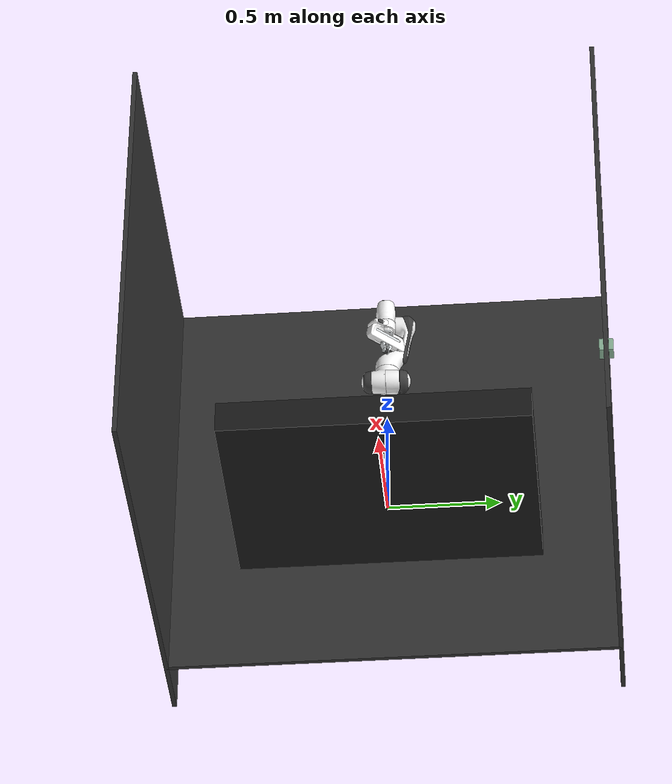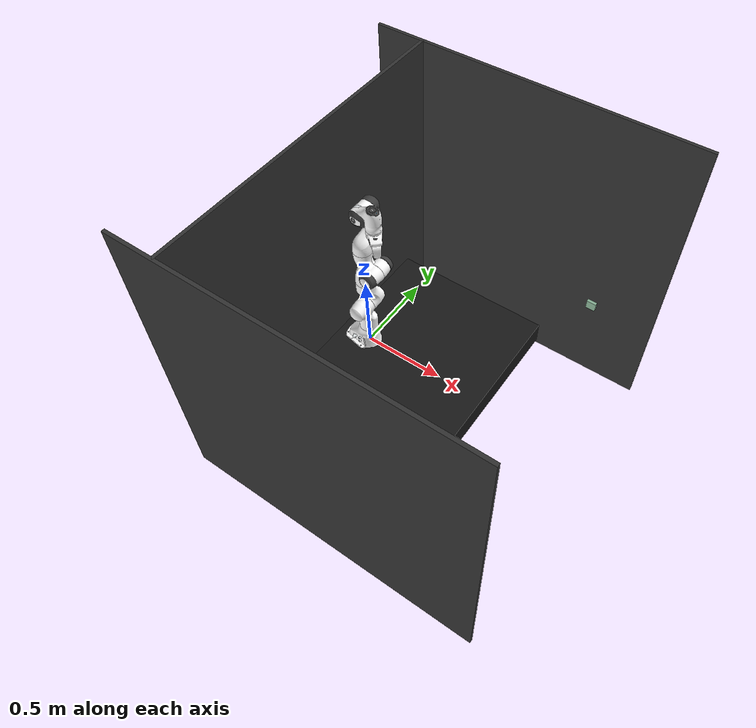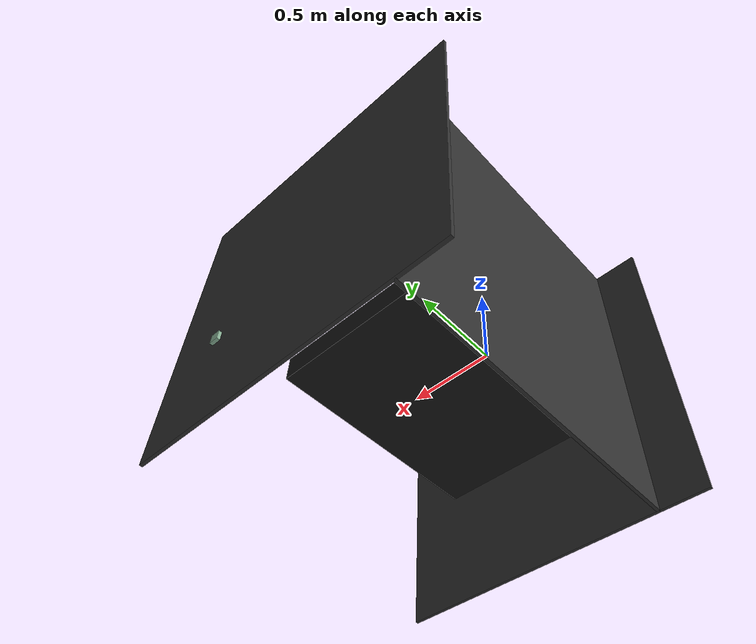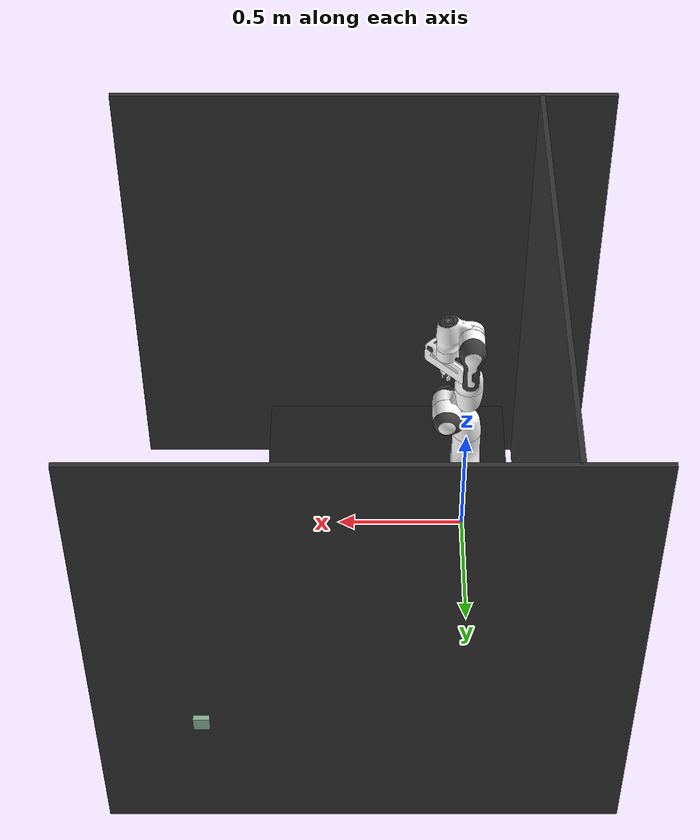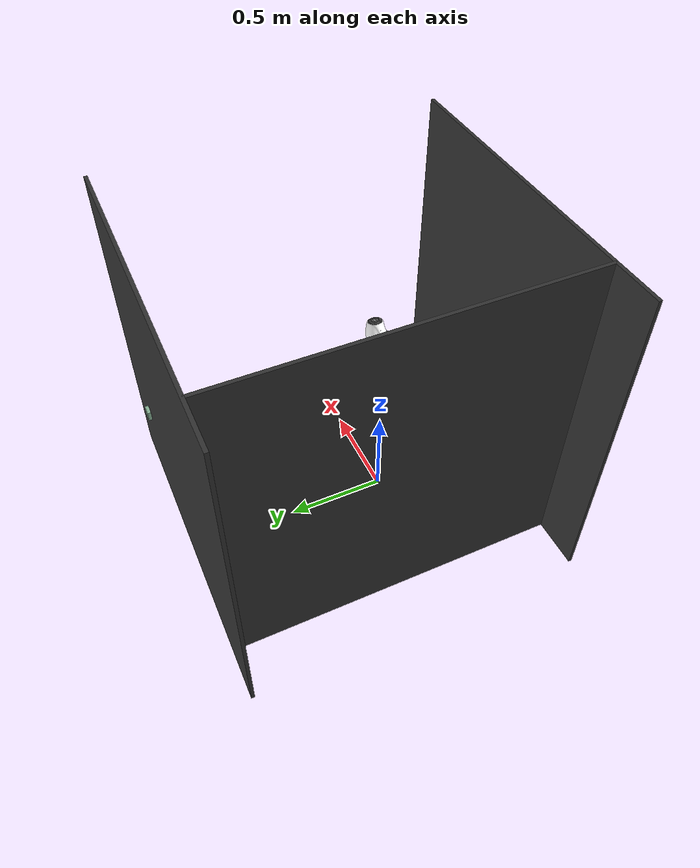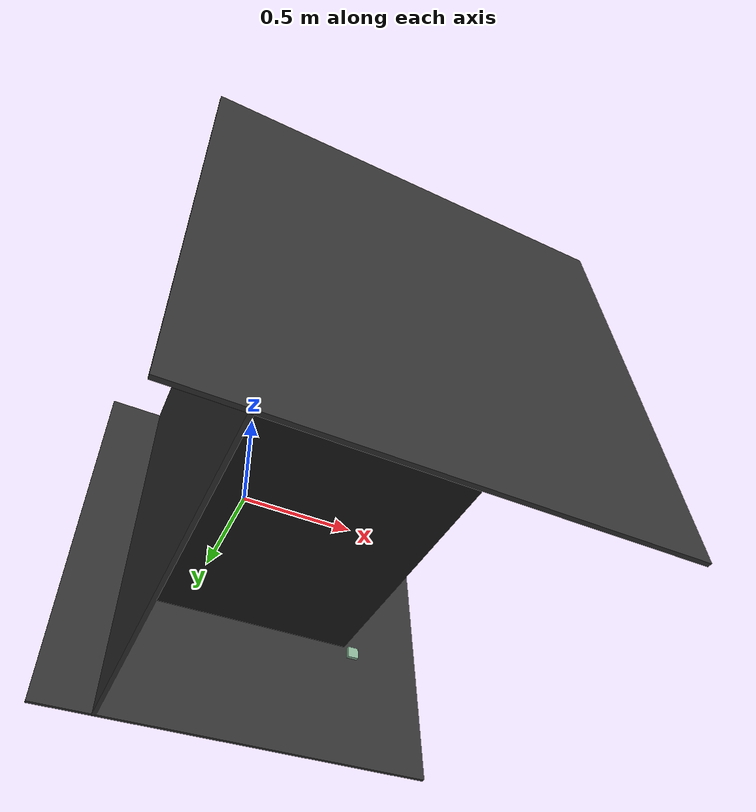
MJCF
<mujoco model="panda scene">
  <include file="panda.xml" />

  <option cone="elliptic" impratio="100" noslip_iterations="3">
        <flag multiccd="enable" />
  </option>

  <statistic center="0.3 0 0.35" extent="0.8" meansize="0.05" />

  <visual>
    <headlight diffuse="0.6 0.6 0.6" ambient="0.1 0.1 0.1" specular="0 0 0" />
    <global azimuth="120" elevation="-20" />
    <quality shadowsize="0" />
  </visual>

  <asset>
    <texture name="grid" type="2d" builtin="checker" rgb1=".2 .3 .4" rgb2=".1 0.15 0.2" width="512" height="512" mark="cross" markrgb=".8 .8 .8" />
    <material name="grid" texture="grid" texrepeat="1 1" texuniform="true" />

  </asset>

  <worldbody>
    <light pos="0 0 1.5" dir="0 0 -1" directional="true" />

     <geom name="vention_table" friction="0.2 0.001 0.00001" pos="0.3 0. -0.075" euler="0 0 0" size="0.5 0.675 0.075" conaffinity="1" contype="1" type="box" rgba="0.1 0.1 0.1 1" condim="3" />

     <light name="light_left" pos="0 0.1 2" dir="0 0 -1" diffuse="1 1 1" specular="0.1 0.1 0.1" ambient="0.1 0.1 0.1" />
     <light name="light_right" pos="0 -0.1 2" dir="0 0 -1" diffuse="1 1 1" specular="0.1 0.1 0.1" ambient="0.1 0.1 0.1" />

      <geom name="wall_back_left" friction="0.2 0.001 0.00001" pos="-0.3 0. 0.4" euler="0. 1.57 0." size="1. 1. 0.01" conaffinity="1" contype="1" type="box" rgba="0.2 0.2 0.2 1." condim="3" />

      <geom name="wall_left" friction="0.2 0.001 0.00001" pos="0.4 1. 0.4" euler="1.57 0. 0." size="1. 1. 0.01" conaffinity="1" contype="1" type="box" rgba="0.2 0.2 0.2 1." condim="3" />

      <geom name="wall_right" friction="0.2 0.001 0.00001" pos="0.4 -1. 0.4" euler="1.57 0. 0." size="1. 1. 0.01" conaffinity="1" contype="1" type="box" rgba="0.2 0.2 0.2 1." condim="3" />

    <camera name="front" pos="1.627 -0.216 0.855" xyaxes="0.161 0.987 0.000 -0.347 0.056 0.936" />
    <camera name="closeup" pos="1.327 -0.216 0.655" xyaxes="0.161 0.987 0.000 -0.347 0.056 0.936" />
    <camera name="custom" pos="1.327 -0.216 0.655" xyaxes="0.161 0.987 0.000 -0.347 0.056 0.936" />

  <body name="cube_0" pos="1.0 1.0 0.03" quat="1 0 0 0"><inertial pos="0 0 0" mass="0.05" diaginertia="0.0004 0.0004 0.0004" /><freejoint name="cube_0" /><geom name="cube_0" type="box" size="0.03 0.03 0.03" contype="1" conaffinity="1" rgba="0.5488135039273248 0.7151893663724195 0.6027633760716439 1.0" friction="1.5 0.1 0.1" solref="0.01 1" solimp="0.9 0.95 0.001" condim="4" /></body><body name="cube_1" pos="1.0 1.0 0.03" quat="1 0 0 0"><inertial pos="0 0 0" mass="0.05" diaginertia="0.0004 0.0004 0.0004" /><freejoint name="cube_1" /><geom name="cube_1" type="box" size="0.03 0.03 0.03" contype="1" conaffinity="1" rgba="0.5448831829968969 0.4236547993389047 0.6458941130666561 1.0" friction="1.5 0.1 0.1" solref="0.01 1" solimp="0.9 0.95 0.001" condim="4" /></body><body name="cube_2" pos="1.0 1.0 0.03" quat="1 0 0 0"><inertial pos="0 0 0" mass="0.05" diaginertia="0.0004 0.0004 0.0004" /><freejoint name="cube_2" /><geom name="cube_2" type="box" size="0.03 0.03 0.03" contype="1" conaffinity="1" rgba="0.4375872112626925 0.8917730007820798 0.9636627605010293 1.0" friction="1.5 0.1 0.1" solref="0.01 1" solimp="0.9 0.95 0.001" condim="4" /></body></worldbody>
<keyframe><key name="home_tmp" qpos="0 0 0 -1.57079 0 1.57079 -0.7853 0.04 0.04 1.0 1.0 0.03 0 0 0 0 1.0 1.0 0.03 0 0 0 0 1.0 1.0 0.03 0 0 0 0" ctrl="0 0 0 -1.57079 0 1.57079 -0.7853 255" /></keyframe></mujoco>

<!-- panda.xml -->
<mujoco model="panda">
  <compiler angle="radian" meshdir="assets" autolimits="true"/>

  <option integrator="implicitfast"/>

  <default>
    <default class="panda">
      <material specular="0.5" shininess="0.25"/>
      <joint armature="0.1" damping="1" axis="0 0 1" range="-2.8973 2.8973"/>
      <general dyntype="none" biastype="affine" ctrlrange="-2.8973 2.8973" forcerange="-87 87"/>
      <default class="finger">
        <joint axis="0 1 0" type="slide" range="0 0.04"/>
      </default>

      <default class="visual">
        <geom type="mesh" contype="0" conaffinity="0" group="2"/>
      </default>
      <default class="collision">
        <geom type="mesh" group="3"/>
        <default class="fingertip_pad_collision_1">
          <geom type="box" size="0.0085 0.004 0.0085" pos="0 0.0055 0.0445"/>
        </default>
        <default class="fingertip_pad_collision_2">
          <geom type="box" size="0.003 0.002 0.003" pos="0.0055 0.002 0.05"/>
        </default>
        <default class="fingertip_pad_collision_3">
          <geom type="box" size="0.003 0.002 0.003" pos="-0.0055 0.002 0.05"/>
        </default>
        <default class="fingertip_pad_collision_4">
          <geom type="box" size="0.003 0.002 0.0035" pos="0.0055 0.002 0.0395"/>
        </default>
        <default class="fingertip_pad_collision_5">
          <geom type="box" size="0.003 0.002 0.0035" pos="-0.0055 0.002 0.0395"/>
        </default>
      </default>
    </default>
  </default>

  <asset>
    <material class="panda" name="white" rgba="1 1 1 1"/>
    <material class="panda" name="off_white" rgba="0.901961 0.921569 0.929412 1"/>
    <material class="panda" name="black" rgba="0.25 0.25 0.25 1"/>
    <material class="panda" name="green" rgba="0 1 0 1"/>
    <material class="panda" name="light_blue" rgba="0.039216 0.541176 0.780392 1"/>

    <!-- Collision meshes -->
    <mesh name="link0_c" file="link0.stl"/>
    <mesh name="link1_c" file="link1.stl"/>
    <mesh name="link2_c" file="link2.stl"/>
    <mesh name="link3_c" file="link3.stl"/>
    <mesh name="link4_c" file="link4.stl"/>
    <mesh name="link5_c0" file="link5_collision_0.obj"/>
    <mesh name="link5_c1" file="link5_collision_1.obj"/>
    <mesh name="link5_c2" file="link5_collision_2.obj"/>
    <mesh name="link6_c" file="link6.stl"/>
    <mesh name="link7_c" file="link7.stl"/>
    <mesh name="hand_c" file="hand.stl"/>

    <!-- Visual meshes -->
    <mesh file="link0_0.obj"/>
    <mesh file="link0_1.obj"/>
    <mesh file="link0_2.obj"/>
    <mesh file="link0_3.obj"/>
    <mesh file="link0_4.obj"/>
    <mesh file="link0_5.obj"/>
    <mesh file="link0_7.obj"/>
    <mesh file="link0_8.obj"/>
    <mesh file="link0_9.obj"/>
    <mesh file="link0_10.obj"/>
    <mesh file="link0_11.obj"/>
    <mesh file="link1.obj"/>
    <mesh file="link2.obj"/>
    <mesh file="link3_0.obj"/>
    <mesh file="link3_1.obj"/>
    <mesh file="link3_2.obj"/>
    <mesh file="link3_3.obj"/>
    <mesh file="link4_0.obj"/>
    <mesh file="link4_1.obj"/>
    <mesh file="link4_2.obj"/>
    <mesh file="link4_3.obj"/>
    <mesh file="link5_0.obj"/>
    <mesh file="link5_1.obj"/>
    <mesh file="link5_2.obj"/>
    <mesh file="link6_0.obj"/>
    <mesh file="link6_1.obj"/>
    <mesh file="link6_2.obj"/>
    <mesh file="link6_3.obj"/>
    <mesh file="link6_4.obj"/>
    <mesh file="link6_5.obj"/>
    <mesh file="link6_6.obj"/>
    <mesh file="link6_7.obj"/>
    <mesh file="link6_8.obj"/>
    <mesh file="link6_9.obj"/>
    <mesh file="link6_10.obj"/>
    <mesh file="link6_11.obj"/>
    <mesh file="link6_12.obj"/>
    <mesh file="link6_13.obj"/>
    <mesh file="link6_14.obj"/>
    <mesh file="link6_15.obj"/>
    <mesh file="link6_16.obj"/>
    <mesh file="link7_0.obj"/>
    <mesh file="link7_1.obj"/>
    <mesh file="link7_2.obj"/>
    <mesh file="link7_3.obj"/>
    <mesh file="link7_4.obj"/>
    <mesh file="link7_5.obj"/>
    <mesh file="link7_6.obj"/>
    <mesh file="link7_7.obj"/>
    <mesh file="hand_0.obj"/>
    <mesh file="hand_1.obj"/>
    <mesh file="hand_2.obj"/>
    <mesh file="hand_3.obj"/>
    <mesh file="hand_4.obj"/>
    <mesh file="finger_0.obj"/>
    <mesh file="finger_1.obj"/>
  </asset>

  <worldbody>
    <light name="top" pos="0 0 2" mode="trackcom"/>
    <body name="link0" childclass="panda">
      <inertial mass="0.629769" pos="-0.041018 -0.00014 0.049974"
        fullinertia="0.00315 0.00388 0.004285 8.2904e-7 0.00015 8.2299e-6"/>
      <geom mesh="link0_0" material="off_white" class="visual"/>
      <geom mesh="link0_1" material="black" class="visual"/>
      <geom mesh="link0_2" material="off_white" class="visual"/>
      <geom mesh="link0_3" material="black" class="visual"/>
      <geom mesh="link0_4" material="off_white" class="visual"/>
      <geom mesh="link0_5" material="black" class="visual"/>
      <geom mesh="link0_7" material="white" class="visual"/>
      <geom mesh="link0_8" material="white" class="visual"/>
      <geom mesh="link0_9" material="black" class="visual"/>
      <geom mesh="link0_10" material="off_white" class="visual"/>
      <geom mesh="link0_11" material="white" class="visual"/>
      <geom mesh="link0_c" class="collision"/>
      <body name="link1" pos="0 0 0.333">
        <inertial mass="4.970684" pos="0.003875 0.002081 -0.04762"
          fullinertia="0.70337 0.70661 0.0091170 -0.00013900 0.0067720 0.019169"/>
        <joint name="joint1"/>
        <geom material="white" mesh="link1" class="visual"/>
        <geom mesh="link1_c" class="collision"/>
        <body name="link2" quat="1 -1 0 0">
          <inertial mass="0.646926" pos="-0.003141 -0.02872 0.003495"
            fullinertia="0.0079620 2.8110e-2 2.5995e-2 -3.925e-3 1.0254e-2 7.04e-4"/>
          <joint name="joint2" range="-1.7628 1.7628"/>
          <geom material="white" mesh="link2" class="visual"/>
          <geom mesh="link2_c" class="collision"/>
          <body name="link3" pos="0 -0.316 0" quat="1 1 0 0">
            <joint name="joint3"/>
            <inertial mass="3.228604" pos="2.7518e-2 3.9252e-2 -6.6502e-2"
              fullinertia="3.7242e-2 3.6155e-2 1.083e-2 -4.761e-3 -1.1396e-2 -1.2805e-2"/>
            <geom mesh="link3_0" material="white" class="visual"/>
            <geom mesh="link3_1" material="white" class="visual"/>
            <geom mesh="link3_2" material="white" class="visual"/>
            <geom mesh="link3_3" material="black" class="visual"/>
            <geom mesh="link3_c" class="collision"/>
            <body name="link4" pos="0.0825 0 0" quat="1 1 0 0">
              <inertial mass="3.587895" pos="-5.317e-2 1.04419e-1 2.7454e-2"
                fullinertia="2.5853e-2 1.9552e-2 2.8323e-2 7.796e-3 -1.332e-3 8.641e-3"/>
              <joint name="joint4" range="-3.0718 -0.0698"/>
              <geom mesh="link4_0" material="white" class="visual"/>
              <geom mesh="link4_1" material="white" class="visual"/>
              <geom mesh="link4_2" material="black" class="visual"/>
              <geom mesh="link4_3" material="white" class="visual"/>
              <geom mesh="link4_c" class="collision"/>
              <body name="link5" pos="-0.0825 0.384 0" quat="1 -1 0 0">
                <inertial mass="1.225946" pos="-1.1953e-2 4.1065e-2 -3.8437e-2"
                  fullinertia="3.5549e-2 2.9474e-2 8.627e-3 -2.117e-3 -4.037e-3 2.29e-4"/>
                <joint name="joint5"/>
                <geom mesh="link5_0" material="black" class="visual"/>
                <geom mesh="link5_1" material="white" class="visual"/>
                <geom mesh="link5_2" material="white" class="visual"/>
                <geom mesh="link5_c0" class="collision"/>
                <geom mesh="link5_c1" class="collision"/>
                <geom mesh="link5_c2" class="collision"/>
                <body name="link6" euler='1.57 0 0'>
                  <inertial mass="1.666555" pos="6.0149e-2 -1.4117e-2 -1.0517e-2"
                    fullinertia="1.964e-3 4.354e-3 5.433e-3 1.09e-4 -1.158e-3 3.41e-4"/>
                  <joint name="joint6" range="-0.0175 3.7525"/>
                  <geom mesh="link6_0" material="off_white" class="visual"/>
                  <geom mesh="link6_1" material="white" class="visual"/>
                  <geom mesh="link6_2" material="black" class="visual"/>
                  <geom mesh="link6_3" material="white" class="visual"/>
                  <geom mesh="link6_4" material="white" class="visual"/>
                  <geom mesh="link6_5" material="white" class="visual"/>
                  <geom mesh="link6_6" material="white" class="visual"/>
                  <geom mesh="link6_7" material="light_blue" class="visual"/>
                  <geom mesh="link6_8" material="light_blue" class="visual"/>
                  <geom mesh="link6_9" material="black" class="visual"/>
                  <geom mesh="link6_10" material="black" class="visual"/>
                  <geom mesh="link6_11" material="white" class="visual"/>
                  <geom mesh="link6_12" material="green" class="visual"/>
                  <geom mesh="link6_13" material="white" class="visual"/>
                  <geom mesh="link6_14" material="black" class="visual"/>
                  <geom mesh="link6_15" material="black" class="visual"/>
                  <geom mesh="link6_16" material="white" class="visual"/>
                  <geom mesh="link6_c" class="collision"/>
                  <body name="link7" pos="0.088 0 0" euler='1.57 0 0'>
                    <inertial mass="7.35522e-01" pos="1.0517e-2 -4.252e-3 6.1597e-2"
                      fullinertia="1.2516e-2 1.0027e-2 4.815e-3 -4.28e-4 -1.196e-3 -7.41e-4"/>
                    <joint name="joint7"/>
                    <geom mesh="link7_0" material="white" class="visual"/>
                    <geom mesh="link7_1" material="black" class="visual"/>
                    <geom mesh="link7_2" material="black" class="visual"/>
                    <geom mesh="link7_3" material="black" class="visual"/>
                    <geom mesh="link7_4" material="black" class="visual"/>
                    <geom mesh="link7_5" material="black" class="visual"/>
                    <geom mesh="link7_6" material="black" class="visual"/>
                    <geom mesh="link7_7" material="white" class="visual"/>
                    <geom mesh="link7_c" class="collision"/>
                    <body name="hand" pos="0 0 0.107" quat="0.9238795 0 0 -0.3826834">
                      <inertial mass="0.73" pos="-0.01 0 0.03" diaginertia="0.001 0.0025 0.0017"/>
                      <geom mesh="hand_0" material="off_white" class="visual"/>
                      <geom mesh="hand_1" material="black" class="visual"/>
                      <geom mesh="hand_2" material="black" class="visual"/>
                      <geom mesh="hand_3" material="white" class="visual"/>
                      <geom mesh="hand_4" material="off_white" class="visual"/>
                      <geom mesh="hand_c" class="collision"/>
                      <body name="left_finger" pos="0 0 0.0584">
                        <inertial mass="0.015" pos="0 0 0" diaginertia="2.375e-6 2.375e-6 7.5e-7"/>
                        <joint name="finger_joint1" class="finger"/>
                        <geom mesh="finger_0" material="off_white" class="visual"/>
                        <geom mesh="finger_1" material="black" class="visual"/>
                        <geom mesh="finger_0" class="collision"/>
                        <geom class="fingertip_pad_collision_1"/>
                        <geom class="fingertip_pad_collision_2"/>
                        <geom class="fingertip_pad_collision_3"/>
                        <geom class="fingertip_pad_collision_4"/>
                        <geom class="fingertip_pad_collision_5"/>
                      </body>
                      <body name="right_finger" pos="0 0 0.0584" quat="0 0 0 1">
                        <inertial mass="0.015" pos="0 0 0" diaginertia="2.375e-6 2.375e-6 7.5e-7"/>
                        <joint name="finger_joint2" class="finger"/>
                        <geom mesh="finger_0" material="off_white" class="visual"/>
                        <geom mesh="finger_1" material="black" class="visual"/>
                        <geom mesh="finger_0" class="collision"/>
                        <geom class="fingertip_pad_collision_1"/>
                        <geom class="fingertip_pad_collision_2"/>
                        <geom class="fingertip_pad_collision_3"/>
                        <geom class="fingertip_pad_collision_4"/>
                        <geom class="fingertip_pad_collision_5"/>
                      </body>
                    </body>
                  </body>
                </body>
              </body>
            </body>
          </body>
        </body>
      </body>
    </body>
  </worldbody>

  <tendon>
    <fixed name="split">
      <joint joint="finger_joint1" coef="0.5"/>
      <joint joint="finger_joint2" coef="0.5"/>
    </fixed>
  </tendon>

  <equality>
    <joint joint1="finger_joint1" joint2="finger_joint2" solimp="0.95 0.99 0.001" solref="0.005 1"/>
  </equality>

  <actuator>
    <general class="panda" name="joint1" joint="joint1" gainprm="4500" biasprm="0 -4500 -450"/>
    <general class="panda" name="joint2" joint="joint2" gainprm="4500" biasprm="0 -4500 -450"
      ctrlrange="-1.7628 1.7628"/>
    <general class="panda" name="joint3" joint="joint3" gainprm="3500" biasprm="0 -3500 -350"/>
    <general class="panda" name="joint4" joint="joint4" gainprm="3500" biasprm="0 -3500 -350"
      ctrlrange="-3.0718 -0.0698"/>
    <general class="panda" name="joint5" joint="joint5" gainprm="2000" biasprm="0 -2000 -200" forcerange="-12 12"/>
    <general class="panda" name="joint6" joint="joint6" gainprm="2000" biasprm="0 -2000 -200" forcerange="-12 12"
      ctrlrange="-0.0175 3.7525"/>
    <general class="panda" name="joint7" joint="joint7" gainprm="2000" biasprm="0 -2000 -200" forcerange="-12 12"/>
    <!-- Remap original ctrlrange (0, 0.04) to (0, 255): 0.04 * 100 / 255 = 0.01568627451 -->
    <general class="panda" name="joint8" tendon="split" forcerange="-100 100" ctrlrange="0 255"
      gainprm="0.01568627451 0 0" biasprm="0 -100 -10"/>
  </actuator>

</mujoco>
